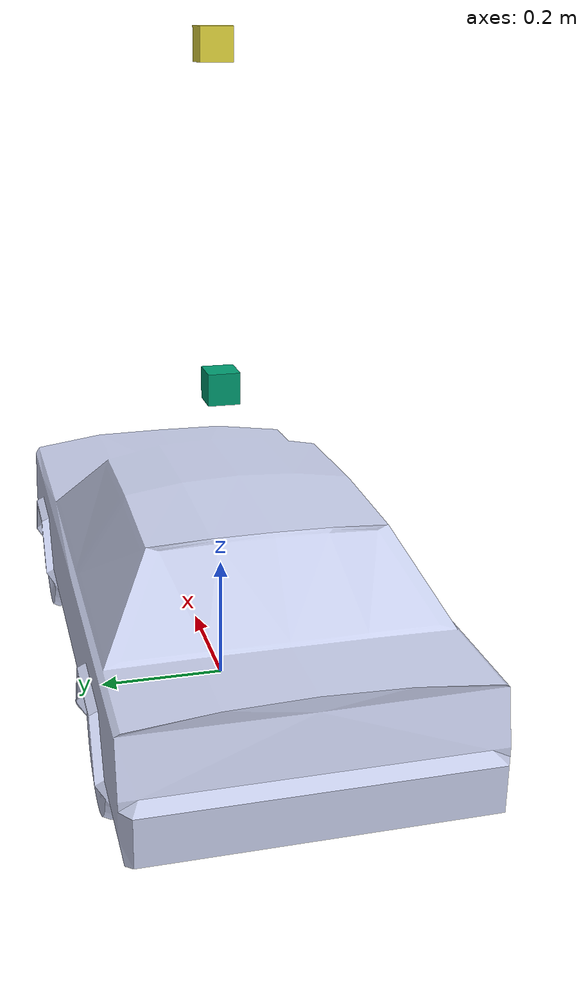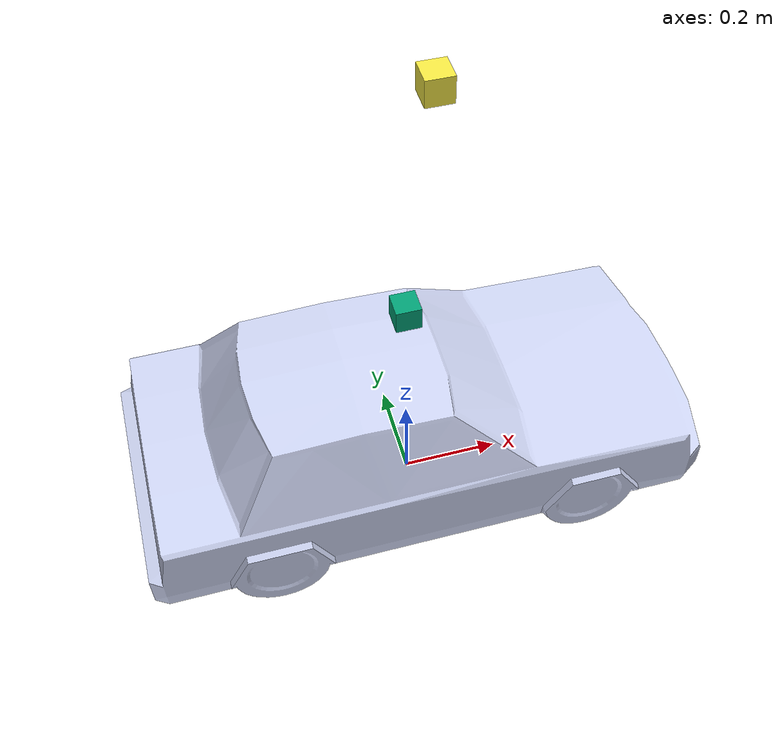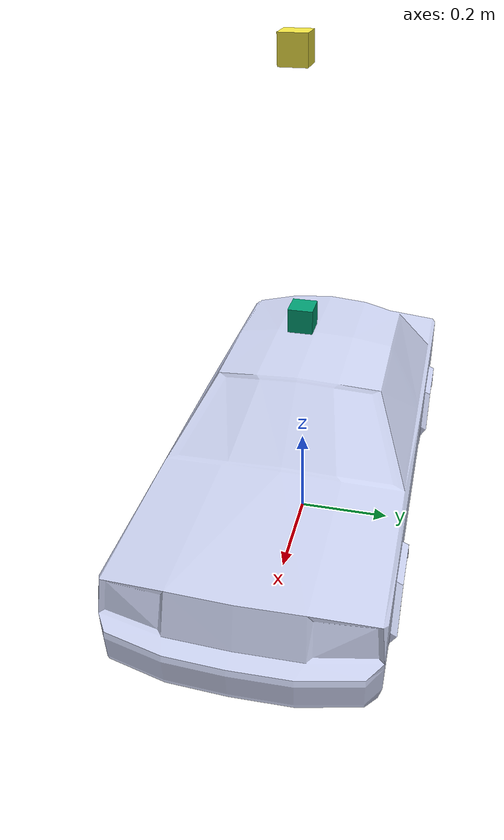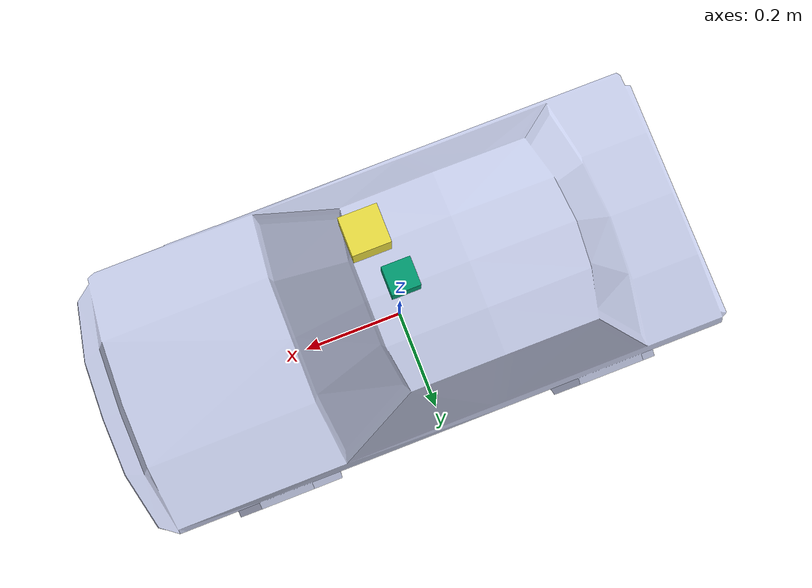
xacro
<?xml version="1.0"?>
<robot name="car_gazebo" xmlns:xacro="http://ros.org/wiki/xacro">

  <xacro:arg name="use_nominal_extrinsics" default="true"/>

  <xacro:include filename="$(find rviz_gazebo)/urdf/car_gazebo_properties_add_lidar.urdf.xacro" />
  <xacro:include filename="$(find rviz_gazebo)/urdf/plugin/driving_car.gazebo.xacro" />
  <xacro:include filename="$(find rviz_gazebo)/urdf/plugin/lidar_car.gazebo.xacro" />
  <xacro:include filename="$(find rviz_gazebo)/urdf/plugin/camera.gazebo.xacro" />

  <xacro:property name="camera_link" value="0.05" />
  <xacro:property name="height3" value="2.0" />
  <xacro:property name="axel_offset" value="0.5" />
  <xacro:property name="hokuyo_link" value="0.05" />

  <xacro:camera_model/>
  <xacro:car_properties/>
  <xacro:lidar_model/>
  <xacro:driving_gazebo_controller/>
</robot>

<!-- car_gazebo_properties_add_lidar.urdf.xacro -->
<robot name="car_properties" xmlns:xacro="http://ros.org/wiki/xacro">

  <xacro:macro name="car_properties">

  <xacro:include filename="$(find rviz_gazebo)/urdf/car_gazebo.urdf" />
  <xacro:include filename="$(find rviz_gazebo)/urdf/car_lidar.urdf"/>
  <xacro:include filename="$(find rviz_gazebo)/urdf/test_camera.urdf"/>

  </xacro:macro>
</robot>

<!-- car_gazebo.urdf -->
<robot name="car_model">
  <link name="base_footprint"/>
  <joint name="base_to_footprint" type="fixed">
    <parent link="base_footprint"/>
    <child link="base_link"/>
    <origin xyz="0 0 0" rpy="0 0 0"/>
  </joint>

  <link name="base_link">
    <inertial>
      <origin xyz="0 0 0" rpy="0 0 0" />
      <mass value="1.0" />
      <inertia
        ixx="0.0190263636116466"
        ixy="-0.00105969560369217"
        ixz="-0.000113993243143701"
        iyy="0.212504819894391"
        iyz="-4.48977417022246E-05"
        izz="0.212078411927734" />
    </inertial>
    <visual>
      <origin
        xyz="0 0 0"
        rpy="0 0 0" />
      <geometry>
        <mesh
          filename="file://$(find rviz_gazebo)/meshes/test_robot/car_model.dae" scale="0.25 0.25 0.25"/>
      </geometry>
      <material
        name="">
        <color
          rgba="0.792156862745098 0.819607843137255 0.933333333333333 1" />
      </material>
    </visual>
    <collision>
      <origin
        xyz="0 0 0"
        rpy="0 0 0" />
      <geometry>
        <mesh
          filename="file://$(find rviz_gazebo)/meshes/test_robot/car_model.dae" scale="0.25 0.25 0.25"/>
      </geometry>
    </collision>
    <gravity>0 0 0</gravity>
  </link>

</robot>

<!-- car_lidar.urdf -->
<robot name="test_lidar">
  <joint name="hokuyo_joint" type="fixed">
    <axis xyz="0 0.5 0" />
    <origin xyz="0 0 0.5" rpy="0 0 0"/>
    <parent link="base_link"/>
    <child link="hokuyo_link"/>
  </joint>

  <link name="hokuyo_link">
    <collision>
      <origin xyz="0 0 0" rpy="0 0 0"/>
      <geometry>
    <box size="0.1 0.1 0.1"/>
      </geometry>
    </collision>

    <visual>
      <origin xyz="0 0 0" rpy="0 0 0"/>
      <geometry>
        <box size="${hokuyo_link} ${hokuyo_link} ${hokuyo_link}"/>
      </geometry>
    </visual>

    <inertial>
      <mass value="1e-5" />
      <origin xyz="0 0 0" rpy="0 0 0"/>
      <inertia ixx="1e-6" ixy="0" ixz="0" iyy="1e-6" iyz="0" izz="1e-6" />
    </inertial>
  </link>
</robot>

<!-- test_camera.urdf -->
<robot name="test_camera">
  <joint name="camera_joint" type="fixed">
    <axis xyz="0 1 0" />
    <origin xyz="${camera_link} 0 ${height3 - axel_offset*2}" rpy="0 0 -1.57"/>
    <parent link="base_link"/>
    <child link="camera_link"/>
  </joint>

  <!-- Camera -->
  <link name="camera_link">
    <collision>
      <origin xyz="0 0 0" rpy="0 0 0"/>
      <geometry>
    <box size="${camera_link} ${camera_link} ${camera_link}"/>
      </geometry>
    </collision>

    <visual>
      <origin xyz="0 0 0" rpy="0 0 0"/>
      <geometry>
    <box size="${camera_link} ${camera_link} ${camera_link}"/>
      </geometry>
    </visual>

    <inertial>
      <mass value="1e-5" />
      <origin xyz="0 0 0" rpy="0 0 0"/>
      <inertia ixx="1e-6" ixy="0" ixz="0" iyy="1e-6" iyz="0" izz="1e-6" />
    </inertial>
  </link>
</robot>
